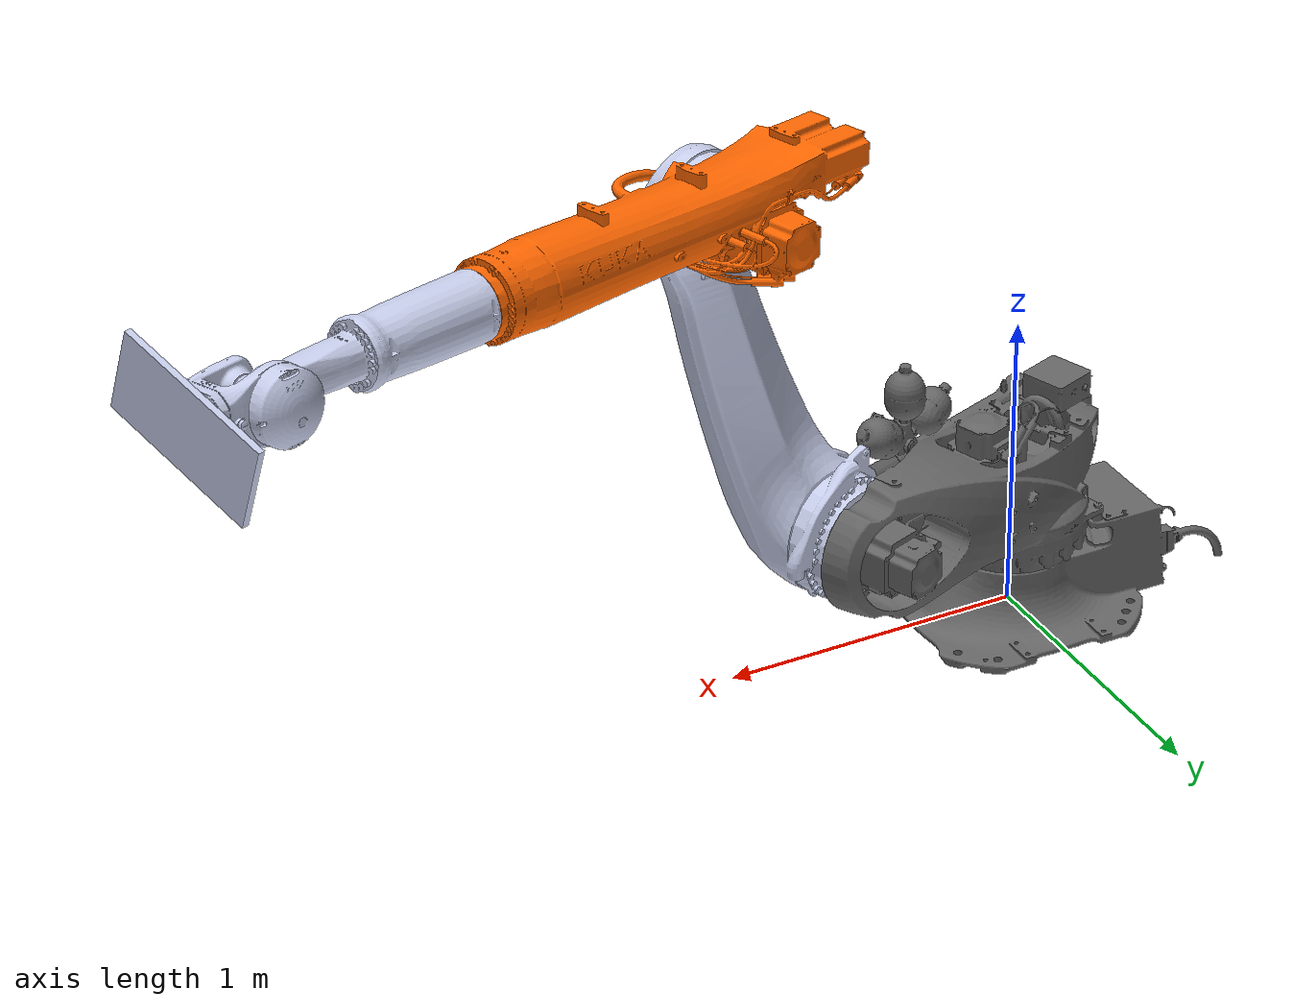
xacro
<?xml version="1.0" encoding="utf-8"?>

<!-- Edited by Sai Krishna Murakonda -->

<robot name="robot_urdf">
  <link name="world" />

  <joint name="jnt_world_to_base_link" type="fixed">
    <origin xyz="0 0 0" rpy="-1.5708 0 0" />
    <parent link="world" />
    <child link="base_link" />
  </joint>

  <link name="base_link">
    <inertial>
      <origin xyz="-0.11981 0.00095475 0.10543" rpy="0 0 0" />
      <mass value="69.419" />
      <inertia
        ixx="1.5959"
        ixy="0.0085722"
        ixz="0.36667"
        iyy="3.5014"
        iyz="-0.0021187"
        izz="4.272" />
    </inertial>
    <visual>
      <origin xyz="0 0 0" rpy="0 0 0" />
      <geometry>
        <mesh filename="package://robot_urdf/meshes/base_link.STL" />
      </geometry>
      <material name="">
        <color rgba="0.4 0.4 0.4 1" />
      </material>
    </visual>
    <collision>
      <origin xyz="0 0 0" rpy="0 0 0" />
      <geometry>
        <mesh filename="package://robot_urdf/meshes/base_link.STL" />
      </geometry>
    </collision>
  </link>

  <link name="Ax1">
    <inertial>
      <origin xyz="0.21322 0.0074862 0.26077" rpy="0 0 0" />
      <mass value="112.66" />
      <inertia
        ixx="2.9338"
        ixy="-0.80384"
        ixz="-1.3414"
        iyy="9.9259"
        iyz="-0.19044"
        izz="9.4935" />
    </inertial>
    <visual>
      <origin xyz="0 0 0" rpy="0 0 0" />
      <geometry>
        <mesh filename="package://robot_urdf/meshes/Ax1.STL" />
      </geometry>
      <material name="">
        <color rgba="0.4 0.4 0.4 1" />
      </material>
    </visual>
    <collision>
      <origin xyz="0 0 0" rpy="0 0 0" />
      <geometry>
        <mesh filename="package://robot_urdf/meshes/Ax1.STL" />
      </geometry>
    </collision>
  </link>

  <joint name="jnt_Base_to_Ax1"
    type="revolute">
    <origin
      xyz="0 -0.21559 0"
      rpy="1.5708 -0.34738 0" />
    <parent
      link="base_link" />
    <child
      link="Ax1" />
    <axis
      xyz="0 0 1" />
    <limit
      lower="-1.04719755"
      upper="+1.04719755"
      effort="0"
      velocity="1" />
  </joint>

  <link name="Ax2">
    <inertial>
      <origin
        xyz="-0.136832656859279 0.0144078767700652 0.32155414214809"
        rpy="0 0 0" />
      <mass
        value="276.998100922925" />
      <inertia
        ixx="318.852709801833"
        ixy="0.776560972222151"
        ixz="-176.545924815262"
        iyy="440.992384902426"
        iyz="2.83426651703951"
        izz="130.06696817012" />
    </inertial>
    <visual>
      <origin
        xyz="0 0 0"
        rpy="0 0 0" />
      <geometry>
        <mesh
          filename="package://robot_urdf/meshes/Ax2.STL" />
      </geometry>
      <material
        name="">
        <color
          rgba="0.792156862745098 0.819607843137255 0.933333333333333 1" />
      </material>
    </visual>
    <collision>
      <origin
        xyz="0 0 0"
        rpy="0 0 0" />
      <geometry>
        <mesh
          filename="package://robot_urdf/meshes/Ax2.STL" />
      </geometry>
    </collision>
  </link>

  <joint name="jnt_Ax1_to_Ax2"
    type="revolute">
    <origin
      xyz="0.73 0 0.32441"
      rpy="0 0.36697 0" />
    <parent
      link="Ax1" />
    <child
      link="Ax2" />
    <axis
      xyz="0 1 0" />
    <limit
      lower="-1.04719755"
      upper="+1.04719755"
      effort="0"
      velocity="1" />
  </joint>

  <link name="Ax3">
    <inertial>
      <origin
        xyz="0.372143478673027 -4.17118121699422E-05 0.106533438863164"
        rpy="0 0 0" />
      <mass
        value="67.8633341977998" />
      <inertia
        ixx="0.581052848871638"
        ixy="-0.13715563051977"
        ixz="-0.0109016166060049"
        iyy="6.85816958909181"
        iyz="-0.0271578725085325"
        izz="6.89752904665077" />
    </inertial>
    <visual>
      <origin
        xyz="0 0 0"
        rpy="0 0 0" />
      <geometry>
        <mesh
          filename="package://robot_urdf/meshes/Ax3.STL" />
      </geometry>
      <material
        name="">
        <color
          rgba="1 0.4 0 1" />
      </material>
    </visual>
    <collision>
      <origin
        xyz="0 0 0"
        rpy="0 0 0" />
      <geometry>
        <mesh
          filename="package://robot_urdf/meshes/Ax3.STL" />
      </geometry>
    </collision>
  </link>

  <joint name="jnt_Ax2_to_Ax3"
    type="revolute">
    <origin
      xyz="0 0 1.35"
      rpy="0 -0.42829 0" />
    <parent
      link="Ax2" />
    <child
      link="Ax3" />
    <axis
      xyz="0 1 0" />
    <limit
      lower="-1.04719755"
      upper="+1.04719755"
      effort="0"
      velocity="1" />
  </joint>

  <link name="Ax4">
    <inertial>
      <origin
        xyz="0.392856388545806 0.00132042157247414 -4.55709173508012E-07"
        rpy="0 0 0" />
      <mass
        value="17.1103007358543" />
      <inertia
        ixx="0.0705705137136241"
        ixy="-0.010191314944453"
        ixz="8.14143746615133E-06"
        iyy="0.798703820206423"
        iyz="-7.86396144529522E-07"
        izz="0.798093040071735" />
    </inertial>
    <visual>
      <origin
        xyz="0 0 0"
        rpy="0 0 0" />
      <geometry>
        <mesh
          filename="package://robot_urdf/meshes/Ax4.STL" />
      </geometry>
      <material
        name="">
        <color
          rgba="0.792156862745098 0.819607843137255 0.933333333333333 1" />
      </material>
    </visual>
    <collision>
      <origin
        xyz="0 0 0"
        rpy="0 0 0" />
      <geometry>
        <mesh
          filename="package://robot_urdf/meshes/Ax4.STL" />
      </geometry>
    </collision>
  </link>

  <joint name="jnt_Ax3_to_Ax4"
    type="revolute">
    <origin
      xyz="0.9909 0 0.115"
      rpy="0.083358 0 0" />
    <parent
      link="Ax3" />
    <child
      link="Ax4" />
    <axis
      xyz="1 0 0" />
    <limit
      lower="-1.04719755"
      upper="+1.04719755"
      effort="0"
      velocity="1" />
  </joint>

  <link name="Ax5">
    <inertial>
      <origin
        xyz="0.051767116658477 0.0338271406479826 -4.43843200792493E-05"
        rpy="0 0 0" />
      <mass
        value="6.83021133378002" />
      <inertia
        ixx="0.0611665262361527"
        ixy="0.0149901526275177"
        ixz="1.89494897224055E-05"
        iyy="0.054041031435701"
        iyz="3.52407908043246E-05"
        izz="0.08587461873486" />
    </inertial>
    <visual>
      <origin
        xyz="0 0 0"
        rpy="0 0 0" />
      <geometry>
        <mesh
          filename="package://robot_urdf/meshes/Ax5.STL" />
      </geometry>
      <material
        name="">
        <color
          rgba="0.792156862745098 0.819607843137255 0.933333333333333 1" />
      </material>
    </visual>
    <collision>
      <origin
        xyz="0 0 0"
        rpy="0 0 0" />
      <geometry>
        <mesh
          filename="package://robot_urdf/meshes/Ax5.STL" />
      </geometry>
    </collision>
  </link>

  <joint name="jnt_Ax4_to_Ax5"
    type="revolute">
    <origin
      xyz="0.8291 0 0"
      rpy="0 0.043548 0" />
    <parent
      link="Ax4" />
    <child
      link="Ax5" />
    <axis
      xyz="0 1 0" />
    <limit
      lower="-1.04719755"
      upper="+1.04719755"
      effort="0"
      velocity="1" />
  </joint>

  <link name="Ax6">
    <inertial>
      <origin
        xyz="0.075421153011026 -7.40807057847404E-06 5.04801295508894E-05"
        rpy="0 0 0" />
      <mass
        value="0.576833152319335" />
      <inertia
        ixx="0.00137814989301989"
        ixy="6.51907434856228E-08"
        ixz="-2.53894277537053E-07"
        iyy="0.000767002773596282"
        iyz="1.31490592791559E-08"
        izz="0.000764903466159646" />
    </inertial>
    <visual>
      <origin
        xyz="0 0 0"
        rpy="0 0 0" />
      <geometry>
        <mesh
          filename="package://robot_urdf/meshes/Ax6.STL" />
      </geometry>
      <material
        name="">
        <color
          rgba="0.792156862745098 0.819607843137255 0.933333333333333 1" />
      </material>
    </visual>
    <collision>
      <origin
        xyz="0 0 0"
        rpy="0 0 0" />
      <geometry>
        <mesh
          filename="package://robot_urdf/meshes/Ax6.STL" />
      </geometry>
    </collision>
  </link>

  <joint name="jnt_Ax5_to_Ax6"
    type="revolute">
    <origin
      xyz="0.1178 0 0"
      rpy="0.051821 0 0" />
    <parent
      link="Ax5" />
    <child
      link="Ax6" />
    <axis
      xyz="1 0 0" />
    <limit
      lower="-1.04719755"
      upper="+1.04719755"
      effort="0"
      velocity="1" />
  </joint>

  <link name="Tool">
    <inertial>
      <origin
        xyz="0.0043843 -0.0089877 0.10702"
        rpy="0 0 0" />
      <mass
        value="2.5342" />
      <inertia
        ixx="0.052186"
        ixy="-4.7054E-16"
        ixz="-2.4194E-16"
        iyy="0.013124"
        iyz="-1.2094E-15"
        izz="0.065131" />
    </inertial>
    <visual>
      <origin
        xyz="0 0 0"
        rpy="0 0 0" />
      <geometry>
        <mesh
          filename="package://robot_urdf/meshes/Tool.STL" />
      </geometry>
      <material
        name="">
        <color
          rgba="0.79216 0.81961 0.93333 1" />
      </material>
    </visual>
    <collision>
      <origin
        xyz="0 0 0"
        rpy="0 0 0" />
      <geometry>
        <mesh
          filename="package://robot_urdf/meshes/Tool.STL" />
      </geometry>
    </collision>
  </link>

  <joint name="FixJnt_Ax6_to_Tool"
    type="fixed">
    <origin
      xyz="0 0.01 0"
      rpy="-1.5708 1.117 -1.5708" />
    <parent
      link="Ax6" />
    <child
      link="Tool" />
    <axis
      xyz="0 0 1" />
    <limit
      lower="-1.04719755"
      upper="+1.04719755"
      effort="0"
      velocity="1" />
  </joint>

</robot>
